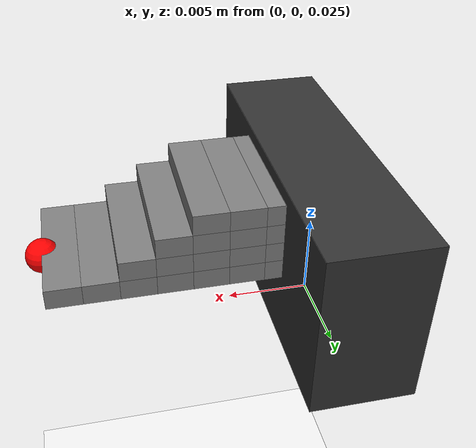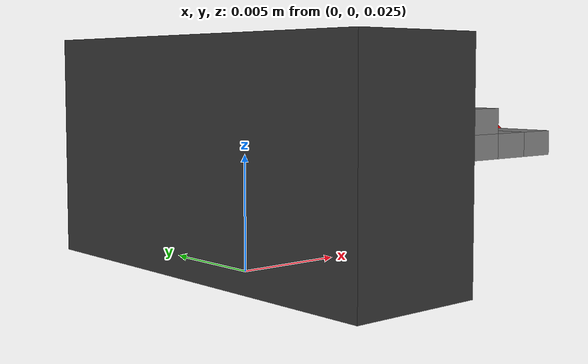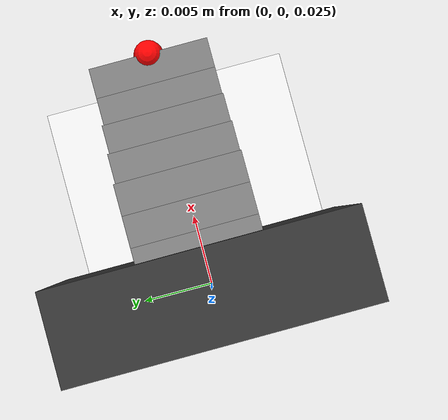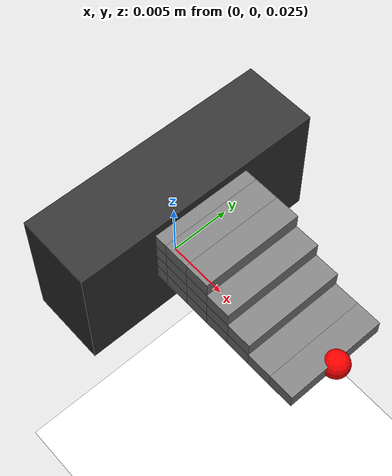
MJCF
<mujoco model="laminated_quarter_elliptic">

  <option timestep="0.001" gravity="0 0 -9.81" integrator="implicitfast"/>
  <compiler angle="radian"/>

  <default>
    <geom friction="1 0.01 0.001"
          solref="0.01 1"
          solimp="0.95 0.99 0.001"/>
    <joint damping="0.02" limited="true" range="-1.0 1.0"/>
  </default>

  <worldbody>

    <geom type="plane" size="2 2 0.1" rgba="0.95 0.95 0.95 1"/>

    <body name="base" pos="0 0 0.03">
      <geom type="box" size="0.003 0.01 0.005" rgba="0.2 0.2 0.2 1"/>

      <!-- LEAF 1 (8 segments) -->
      <body name="leaf1_root" pos="0 0 0.000">
        <joint type="hinge" axis="0 1 0" stiffness="0.02"/>
        <geom type="box" pos="0.001 0 0" size="0.001 0.004 0.0006"/>

        <body pos="0.002 0 0">
          <joint type="hinge" axis="0 1 0" stiffness="0.02"/>
          <geom type="box" pos="0.001 0 0" size="0.001 0.004 0.0006"/>

          <body pos="0.002 0 0">
            <joint type="hinge" axis="0 1 0" stiffness="0.02"/>
            <geom type="box" pos="0.001 0 0" size="0.001 0.004 0.0006"/>

            <body pos="0.002 0 0">
              <joint type="hinge" axis="0 1 0" stiffness="0.02"/>
              <geom type="box" pos="0.001 0 0" size="0.001 0.004 0.0006"/>

              <body pos="0.002 0 0">
                <joint type="hinge" axis="0 1 0" stiffness="0.02"/>
                <geom type="box" pos="0.001 0 0" size="0.001 0.004 0.0006"/>

                <body pos="0.002 0 0">
                  <joint type="hinge" axis="0 1 0" stiffness="0.02"/>
                  <geom type="box" pos="0.001 0 0" size="0.001 0.004 0.0006"/>

                  <body pos="0.002 0 0">
                    <joint type="hinge" axis="0 1 0" stiffness="0.02"/>
                    <geom type="box" pos="0.001 0 0" size="0.001 0.004 0.0006"/>

                    <body name="leaf1_tip" pos="0.002 0 0">
                      <joint type="hinge" axis="0 1 0" stiffness="0.02"/>
                      <geom type="box" pos="0.001 0 0" size="0.001 0.004 0.0006"/>
                      <site name="tip_site" pos="0.002 0 0"
                            size="0.001" rgba="1 0 0 1"/>
                    </body>

                  </body>
                </body>
              </body>
            </body>
          </body>
        </body>
      </body>

      <!-- LEAF 2 (6 segments) -->
      <body name="leaf2_root" pos="0 0 0.0012">
        <joint type="hinge" axis="0 1 0" stiffness="0.02"/>
        <geom type="box" pos="0.001 0 0" size="0.001 0.004 0.0006"/>

        <body pos="0.002 0 0">
          <joint type="hinge" axis="0 1 0" stiffness="0.02"/>
          <geom type="box" pos="0.001 0 0" size="0.001 0.004 0.0006"/>

          <body pos="0.002 0 0">
            <joint type="hinge" axis="0 1 0" stiffness="0.02"/>
            <geom type="box" pos="0.001 0 0" size="0.001 0.004 0.0006"/>

            <body pos="0.002 0 0">
              <joint type="hinge" axis="0 1 0" stiffness="0.02"/>
              <geom type="box" pos="0.001 0 0" size="0.001 0.004 0.0006"/>

              <body pos="0.002 0 0">
                <joint type="hinge" axis="0 1 0" stiffness="0.02"/>
                <geom type="box" pos="0.001 0 0" size="0.001 0.004 0.0006"/>

                <body name="leaf2_tip" pos="0.002 0 0">
                  <joint type="hinge" axis="0 1 0" stiffness="0.02"/>
                  <geom type="box" pos="0.001 0 0" size="0.001 0.004 0.0006"/>
                </body>

              </body>
            </body>
          </body>
        </body>
      </body>

      <!-- LEAF 3 (5 segments) -->
      <body name="leaf3_root" pos="0 0 0.0024">
        <joint type="hinge" axis="0 1 0" stiffness="0.02"/>
        <geom type="box" pos="0.001 0 0" size="0.001 0.004 0.0006"/>

        <body pos="0.002 0 0">
          <joint type="hinge" axis="0 1 0" stiffness="0.02"/>
          <geom type="box" pos="0.001 0 0" size="0.001 0.004 0.0006"/>

          <body pos="0.002 0 0">
            <joint type="hinge" axis="0 1 0" stiffness="0.02"/>
            <geom type="box" pos="0.001 0 0" size="0.001 0.004 0.0006"/>

            <body pos="0.002 0 0">
              <joint type="hinge" axis="0 1 0" stiffness="0.02"/>
              <geom type="box" pos="0.001 0 0" size="0.001 0.004 0.0006"/>

              <body name="leaf3_tip" pos="0.002 0 0">
                <joint type="hinge" axis="0 1 0" stiffness="0.02"/>
                <geom type="box" pos="0.001 0 0" size="0.001 0.004 0.0006"/>
              </body>

            </body>
          </body>
        </body>
      </body>

      <!-- LEAF 4 (4 segments) -->
      <body name="leaf4_root" pos="0 0 0.0036">
        <joint type="hinge" axis="0 1 0" stiffness="0.02"/>
        <geom type="box" pos="0.001 0 0" size="0.001 0.004 0.0006"/>

        <body pos="0.002 0 0">
          <joint type="hinge" axis="0 1 0" stiffness="0.02"/>
          <geom type="box" pos="0.001 0 0" size="0.001 0.004 0.0006"/>

          <body pos="0.002 0 0">
            <joint type="hinge" axis="0 1 0" stiffness="0.02"/>
            <geom type="box" pos="0.001 0 0" size="0.001 0.004 0.0006"/>

            <body name="leaf4_tip" pos="0.002 0 0">
              <joint type="hinge" axis="0 1 0" stiffness="0.02"/>
              <geom type="box" pos="0.001 0 0" size="0.001 0.004 0.0006"/>
            </body>

          </body>
        </body>
      </body>

    </body>

  </worldbody>
</mujoco>
